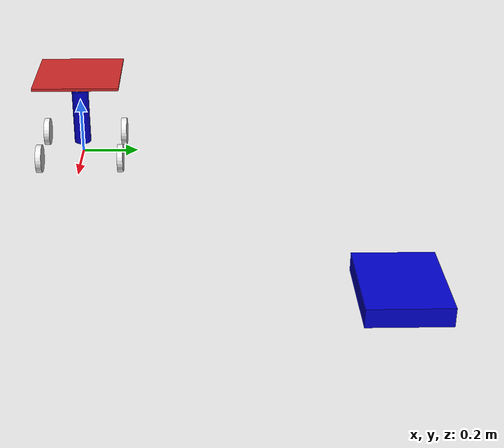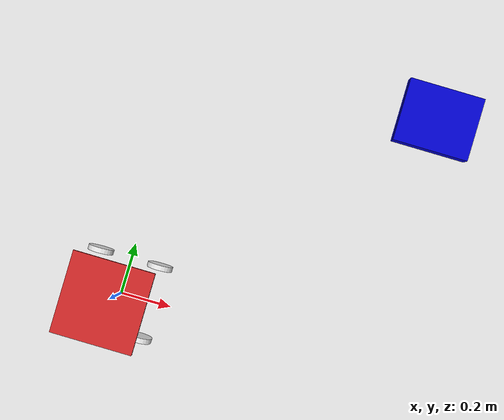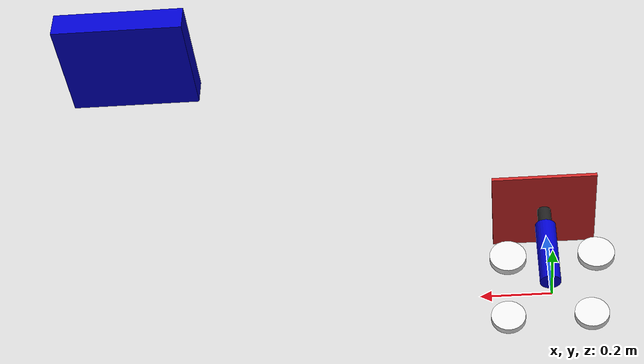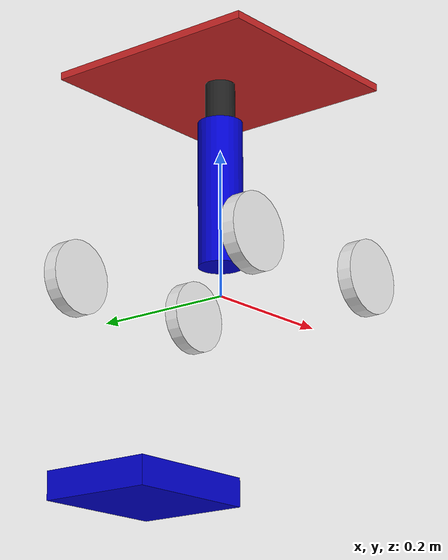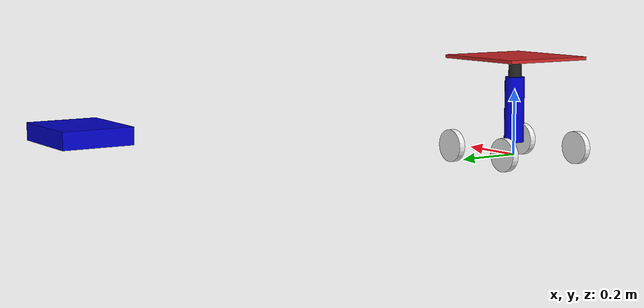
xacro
<?xml version="1.0"?>
<robot xmlns:xacro="http://www.ros.org/wiki/xacro" name="minion">

<xacro:macro name="minionbot" params="name xo yo">

  <material name="blue">
    <color rgba="0 0 0.8 1"/>
  </material>

  <material name="green">
    <color rgba="0 0.8 0 1"/>
  </material>

  <material name="white">
    <color rgba="1 1 1 1"/>
  </material>

  <!-- Constants-->
  <xacro:property name="namespace"       value="minion" />
  <xacro:property name="chassis_mass"    value="2.5" />
  <xacro:property name="chassis_length"  value="0.3" />
  <xacro:property name="chassis_width"   value="0.25" />
  <xacro:property name="chassis_height"  value="0.06" />
  <xacro:property name="battery_mass"    value="0.05" />
  <xacro:property name="battery_length"  value="0.07" />
  <xacro:property name="battery_width"   value="0.05" />
  <xacro:property name="battery_height"  value="0.05" />
  <xacro:property name="wheel_thickness" value="0.02" />
  <xacro:property name="wheel_mass"      value="0.5" />

  <xacro:property name="piston_moving_r"      value="0.02" />
  <xacro:property name="piston_moving_h"      value="0.20" />
  <xacro:property name="piston_moving_m"      value="0.35" />

  <!-- More Constants -->
  <xacro:property name="lwid" value="left_wheel"/>
  <xacro:property name="rwid" value="right_wheel"/>
  <xacro:property name="ID" value="0"/>
  <xacro:property name="wheel_radius" value="0.05"/>
  <xacro:property name="joint_height" value="0.025"/>

  <xacro:macro name="wheel_inertia" params="mass">
      <inertial>
          <mass value="${mass}" />
          <inertia ixx="${mass*(3*wheel_radius*wheel_radius+wheel_thickness*wheel_thickness)/12}" ixy="0.0" ixz="0.0" iyy="${mass*(3*wheel_radius*wheel_radius+wheel_thickness*wheel_thickness)/12}" iyz="0.0" izz="${mass*wheel_radius*wheel_radius/2}"/>
      </inertial>
  </xacro:macro>

  <xacro:macro name="wheel_link" params="id radius thickness color mass">
    <link name="${namespace}/${id}">
      <inertial>
          <mass value="${wheel_mass}"/>
          <inertia ixx="${wheel_mass*(3*radius*radius + thickness*thickness)/12}"  ixy="0"  ixz="0" iyy="${wheel_mass*(3*radius*radius + thickness*thickness)/12}" iyz="0" izz="${wheel_mass*(radius*radius)/2}" />
      </inertial>

      <visual>
        <geometry>
          <cylinder length="${thickness}" radius="${radius}"/>
        </geometry>
        <origin rpy="0 1.5707 1.5707" xyz="0 0 0"/>
      </visual>

      <material name="${color}"/>

      <collision>
        <geometry>
          <cylinder length="${thickness}" radius="${radius}"/>
        </geometry>
        <origin rpy="0 1.5707 1.5707" xyz="0 0 0"/>
      </collision>

      <xacro:wheel_inertia mass="${wheel_mass}"/>
    </link>

    <gazebo reference="${namespace}/${id}">
      <mu value="200"/>
      <mu2 value="200"/>
      <kp value="4000.0" />
      <kd value="100.0" />
      <material>Gazebo/White</material>
    </gazebo>
  </xacro:macro>

  <xacro:macro name="wheel_joint" params="id child x y z">
   <joint name="${id}" type="continuous">
     <parent link="${namespace}/base_link"/>
     <child link="${namespace}/${child}"/>
     <origin xyz="${x} ${y} ${z}"/>
     <axis xyz="0 1 0"/>
     <!--limit effort="0.13" velocity="621"/-->
     <!--safety_controller k_velocity="0.0002"/-->
   </joint>
  </xacro:macro>

  <transmission name="pt">
    <type>transmission_interface/SimpleTransmission</type>
    <actuator name="ptptpt">
      <mechanicalReduction>1</mechanicalReduction>
    </actuator>
    <joint name="base_piston_moving">
      <hardwareInterface>hardware_interface/PositionJointInterface</hardwareInterface>
</joint>
  </transmission>

 <xacro:macro name="wheel_joint_transmission" params="id">
  <transmission name="${id}_trans">
    <type>transmission_interface/SimpleTransmission</type>
    <actuator name="${id}_motor">
      <mechanicalReduction>1</mechanicalReduction>
    </actuator>
    <joint name="${id}">
      <hardwareInterface>hardware_interface/VelocityJointInterface</hardwareInterface>
    </joint>
  </transmission>
  </xacro:macro>

  <link name="${namespace}/base_link">
    <visual>
      <geometry>
        <box size="${chassis_length} ${chassis_width} ${chassis_height}"/>
      </geometry>
      <material name="blue"/>
      <origin xyz="${xo} ${yo} ${joint_height}"/>
    </visual>
    <collision>
      <geometry>
        <box size="${chassis_length} ${chassis_width} ${chassis_height}"/>
      </geometry>
      <origin xyz="${xo} ${yo} ${joint_height}"/>
    </collision>
    <inertial>
      <mass value="${chassis_mass}"/>
      <inertia ixx="${chassis_mass*chassis_width*chassis_width/12+chassis_mass*chassis_height*chassis_height/12}" ixy="0.0" ixz="0.0"
        iyy="${chassis_mass*chassis_length*chassis_length/12+chassis_mass*chassis_height*chassis_height/12}" iyz="0.0"
        izz="${chassis_mass*chassis_length*chassis_length/12+chassis_mass*chassis_width*chassis_width/12}"/>
    </inertial>
  </link>
  <gazebo reference="${namespace}/base_link">
    <material>Gazebo/Orange</material>
  </gazebo>

  <link name="${namespace}/piston_fixed">
      <inertial>
          <inertia ixx="0.01" ixy="0" ixz="0" iyy="0.01" iyz="0" izz="0.01"/>
          <mass value="0.4"/>
      </inertial>
      <collision name="collision">
          <geometry>
            <cylinder length="0.2" radius="0.03"/>
          </geometry>
      </collision>
      <visual name="visual">
          <geometry>
            <cylinder length="0.2" radius="0.03"/>
          </geometry>
          <material name="blue"/>
      </visual>
  </link>

  <gazebo reference="${namespace}/piston_fixed">
    <material>Gazebo/Grey</material>
  </gazebo>

  <joint name="${namespace}/base_piston_fixed" type="fixed">
     <parent link="${namespace}/base_link"/>
     <child link="${namespace}/piston_fixed"/>
     <origin xyz="${0} 0 ${chassis_height + 0.08}"/>
  </joint>

  <link name="${namespace}/piston_moving">
      <inertial>
          <inertia ixx="${piston_moving_m*((3*piston_moving_r*piston_moving_r) + (piston_moving_h*piston_moving_h))/12}" ixy="0" ixz="0" iyy="${piston_moving_m*((3*piston_moving_r*piston_moving_r) + (piston_moving_h*piston_moving_h))/12}" iyz="0" izz="${0.5*piston_moving_m*piston_moving_r*piston_moving_r}"/>
          <mass value="${piston_moving_m}"/>
      </inertial>
      <collision name="collision">
          <geometry>
            <cylinder length="${piston_moving_h}" radius="${piston_moving_r}"/>
          </geometry>
      </collision>
      <visual name="visual">
          <geometry>
            <cylinder length="${piston_moving_h}" radius="${piston_moving_r}"/>
          </geometry>
      </visual>
  </link>

  <gazebo reference="${namespace}/piston_moving">
    <material>Gazebo/Black</material>
  </gazebo>

  <joint name="base_piston_moving" type="prismatic">
     <parent link="${namespace}/piston_fixed"/>
     <child link="${namespace}/piston_moving"/>
     <provide_feedback>true</provide_feedback>
     <limit effort="100" lower="0" upper="10" velocity="0.01"/>
     <origin xyz="0 0 ${chassis_height}"/>
     <axis xyz="0 0 1"/>
  </joint>

  <link name="${namespace}/piston_plate">
      <inertial>
          <mass value="0.2"/>
          <inertia ixx="${0.02*(.3*.3 + 0.01*0.01)/12}"  ixy="0"  ixz="0" iyy="${0.02*(.3*.3 + 0.01*0.01)/12}" iyz="0" izz="${0.02*(.3*.3 + .3*.3)/12}" />
      </inertial>

      <collision name="collision">
          <geometry>
            <box size="0.3 0.3 0.018"/>
          </geometry>
          <surface>
            <friction>
              <ode>
                <mu>1000000</mu>
                <mu2>1000000</mu2>
                <kp value="1000" />
                <kd value="1000" />
              </ode>
            </friction>
          </surface>
      </collision>

      <visual name="visual">
          <geometry>
            <box size="0.3 0.3 0.01"/>
          </geometry>
          <material name="Red"/>
      </visual>

  </link>

  <gazebo reference="${namespace}/piston_plate">
    <material>Gazebo/Red</material>
 </gazebo>

<!-- original  -->
<!-- original end -->

<!-- https://answers.ros.org/question/258420/ball-joint-in-urdf/ -->

<!-- type 1 start -->
  <joint name="${namespace}/base_piston_plate" type="revolute">
    <parent link="${namespace}/piston_moving"/>
    <child link="${namespace}/junta1"/>
    <axis xyz="0 1 0" />
    <dynamics damping="0.01" friction="0.02"/>
    <limit effort="500" velocity="1.0" lower="-0.25" upper="0.25" />
    <origin xyz="0 0 ${chassis_height + 0.04}"/>
  </joint>

  <link name="${namespace}/junta1">
    <inertial>
      <mass value="0.01" />
      <inertia ixx="5.8083e-4" ixy="0" ixz="0" iyy="3.0833e-5" iyz="0" izz="5.9083e-4" />
    </inertial>
  </link>

  <joint name="${namespace}_joint2" type="revolute">
    <parent link="${namespace}/junta1"/>
    <child link="${namespace}/junta2"/>
    <axis xyz="0 0 1" />
    <dynamics damping="0.01" friction="0.02"/>
    <limit effort="500" velocity="1.0" lower="-0.25" upper="0.25" />
  </joint>

  <link name="${namespace}/junta2">
    <inertial>
      <mass value="0.01" />
      <inertia ixx="5.8083e-4" ixy="0" ixz="0" iyy="3.0833e-5" iyz="0" izz="5.9083e-4" />
    </inertial>
  </link>

  <joint name="${namespace}_joint3" type="revolute">
    <parent link="${namespace}/junta2"/>
    <child link="${namespace}/junta3"/>
    <axis xyz="1 0 0" />
    <dynamics damping="0.01" friction="0.02"/>
    <limit effort="500" velocity="1.0" lower="-0.25" upper="0.25" />
  </joint>

  <link name="${namespace}/junta3">
    <inertial>
      <mass value="0.01" />
      <inertia ixx="5.8083e-4" ixy="0" ixz="0" iyy="3.0833e-5" iyz="0" izz="5.9083e-4" />
    </inertial>
  </link>

<joint name="${namespace}_jointfixed" type="fixed">
    <parent link="${namespace}/junta3"/>
    <child link="${namespace}/piston_plate"/>
 -->  </joint>
<!-- type 1 end -->

<!-- type 2 start -->

<!-- type 2 end -->

  <!--Left Side-->
  <xacro:wheel_link id="${lwid}_${ID+1}" radius="${wheel_radius}" thickness="${wheel_thickness}" color="orange" mass="${wheel_mass}"/>
  <xacro:wheel_joint id="blw_${ID+1}" child="${lwid}_${ID+1}" x="${-chassis_length/2+0.03}" y="${chassis_width/2+0.02}" z="${joint_height}"/>
  <xacro:wheel_joint_transmission id="blw_${ID+1}"/>

  <xacro:wheel_link id="${lwid}_${ID+0}" radius="${wheel_radius}" thickness="${wheel_thickness}" color="orange" mass="${wheel_mass}"/>
  <xacro:wheel_joint id="blw_${ID+0}" child="${lwid}_${ID+0}" x="${chassis_length/2-0.03}" y="${chassis_width/2+0.02}" z="${joint_height}"/>

  <!--Right Side-->
  <xacro:wheel_link id="${rwid}_${ID+1}" radius="${wheel_radius}" thickness="${wheel_thickness}" color="orange" mass="${wheel_mass}"/>
  <xacro:wheel_joint id="brw_${ID+1}" child="${rwid}_${ID+1}" x="${-chassis_length/2+0.03}" y="${-chassis_width/2-0.02}" z="${joint_height}"/>
  <xacro:wheel_joint_transmission id="brw_${ID+1}"/>

  <xacro:wheel_link id="${rwid}_${ID+0}" radius="${wheel_radius}" thickness="${wheel_thickness}" color="orange" mass="${wheel_mass}"/>
  <xacro:wheel_joint id="brw_${ID+0}" child="${rwid}_${ID+0}" x="${+chassis_length/2-0.03}" y="${-chassis_width/2-0.02}" z="${joint_height}"/>

  <gazebo>
    <plugin name="gazebo_ros_control" filename="libgazebo_ros_control.so">
    </plugin>
    <plugin name="imu_plugin" filename="libgazebo_ros_imu.so">
      <alwaysOn>true</alwaysOn>
      <bodyName>${namespace}/base_link</bodyName>
      <topicName>imu</topicName>
      <serviceName>imu_service</serviceName>
      <gaussianNoise>0.0</gaussianNoise>
      <updateRate>20.0</updateRate>
    </plugin>

    <plugin name="p3d_base_controller" filename="libgazebo_ros_p3d.so">
      <alwaysOn>true</alwaysOn>
      <updateRate>50.0</updateRate>
      <bodyName>${namespace}/base_link</bodyName>
      <topicName>ground_truth_pose</topicName>
      <gaussianNoise>0.01</gaussianNoise>
      <frameName>world</frameName>
      <xyzOffsets>0 0 0</xyzOffsets>
      <rpyOffsets>0 0 0</rpyOffsets>
    </plugin>

  </gazebo>

</xacro:macro>

<xacro:minionbot name="bot0" xo="1" yo="1"/>

</robot>
